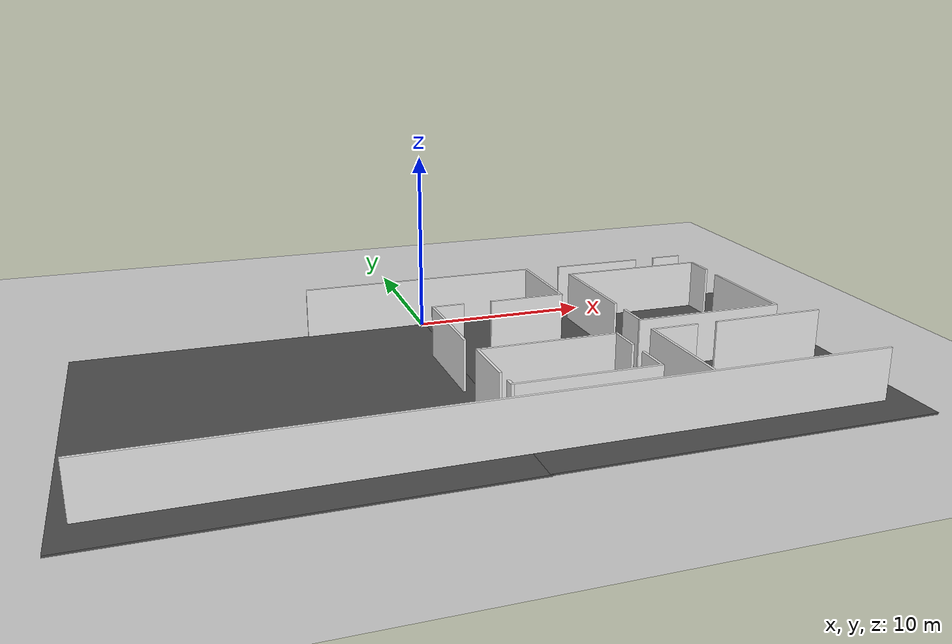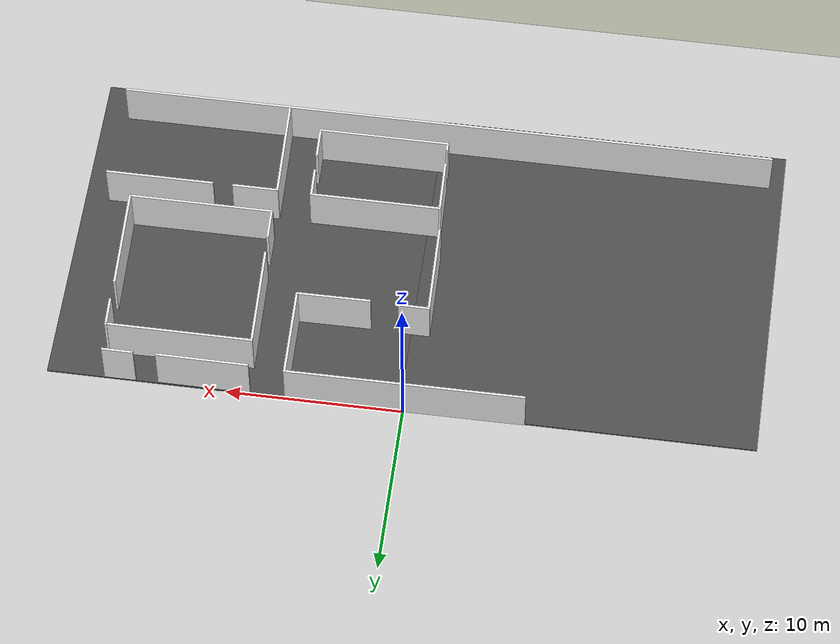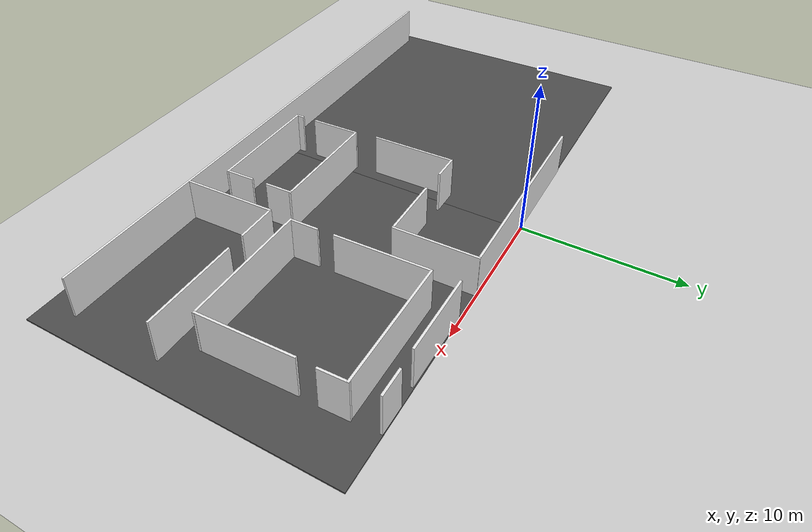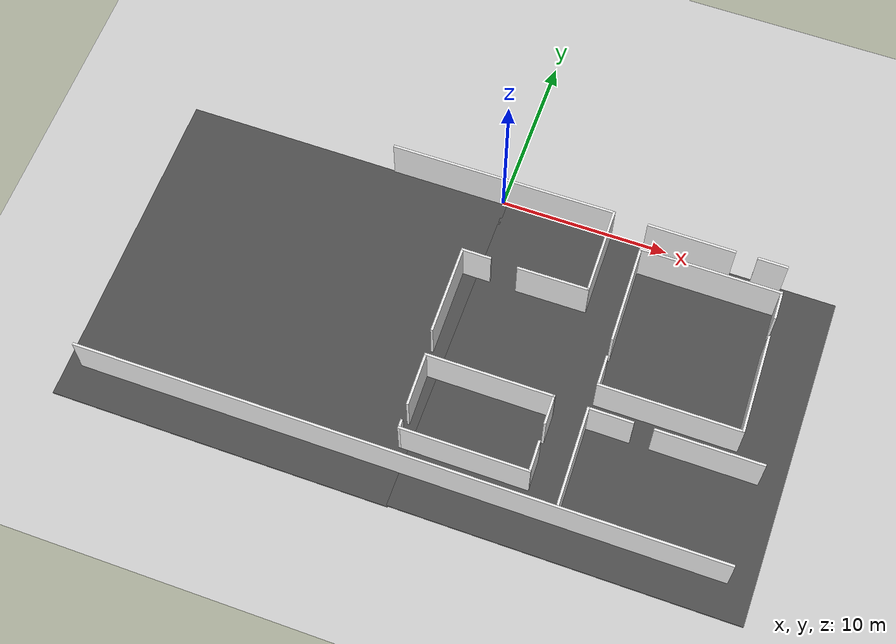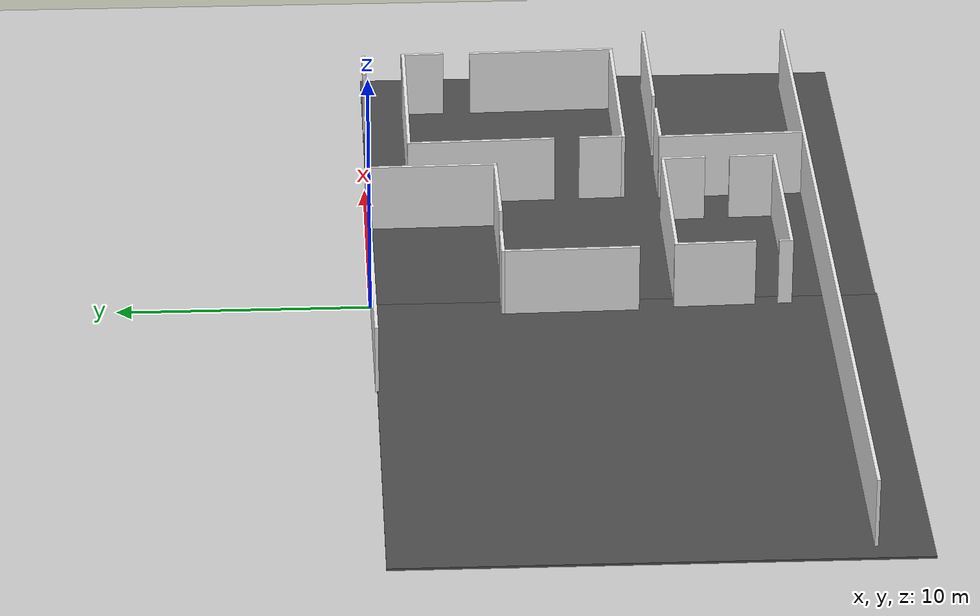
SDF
<sdf version="1.6">
 <world name="default">
  <model name="ground_plane">
   <static>1</static>
   <link name="link">
    <collision name="collision">
     <geometry><plane><normal>0 0 1</normal><size>100 100</size></plane></geometry>
     <surface><friction><ode><mu>100</mu><mu2>50</mu2></ode></friction></surface>
    </collision>
    <visual name="visual">
     <cast_shadows>0</cast_shadows>
     <geometry><plane><normal>0 0 1</normal><size>100 100</size></plane></geometry>
     <material>
      <script><uri>file://media/materials/scripts/gazebo.material</uri><name>Gazebo/Grey</name></script>
     </material>
    </visual>
    <velocity_decay><linear>0</linear><angular>0</angular></velocity_decay>
   </link>
  </model>
  <model name="asphalt_plane">
   <static>1</static>
   <link name="link">
    <collision name="collision"><geometry><box><size>20 20 0.1</size></box></geometry></collision>
    <visual name="visual">
     <cast_shadows>0</cast_shadows>
     <geometry><box><size>20 20 0.1</size></box></geometry>
     <material>
      <script>
       <uri>model://asphalt_plane/materials/scripts</uri>
       <uri>model://asphalt_plane/materials/textures</uri>
       <name>vrc/asphalt</name>
      </script>
     </material>
    </visual>
   </link>
   <pose>-9.73878 -10.1135 0 0 -0 0</pose>
  </model>
  <model name="asphalt_plane_1">
   <static>1</static>
   <link name="link">
    <collision name="collision"><geometry><box><size>20 20 0.1</size></box></geometry></collision>
    <visual name="visual">
     <cast_shadows>0</cast_shadows>
     <geometry><box><size>20 20 0.1</size></box></geometry>
     <material>
      <script>
       <uri>model://asphalt_plane/materials/scripts</uri>
       <uri>model://asphalt_plane/materials/textures</uri>
       <name>vrc/asphalt</name>
      </script>
     </material>
    </visual>
   </link>
   <pose>10.1506 -10.0531 0 0 -0 0</pose>
  </model>
  <model name="white_wall_outside_clone">
   <link name="link">
    <inertial>
     <mass>1</mass>
     <inertia>
      <ixx>0.166667</ixx>
      <ixy>0</ixy>
      <ixz>0</ixz>
      <iyy>0.166667</iyy>
      <iyz>0</iyz>
      <izz>0.166667</izz>
     </inertia>
    </inertial>
    <visual name="visual">
     <geometry><box><size>37.6355 0.139088 2.78993</size></box></geometry>
     <material>
      <script><name>Gazebo/White</name><uri>file://media/materials/scripts/gazebo.material</uri></script>
      <shader type="vertex"><normal_map>__default__</normal_map></shader>
      <ambient>1 1 1 1</ambient>
      <diffuse>1 1 1 1</diffuse>
      <specular>0 0 0 1</specular>
      <emissive>0 0 0 1</emissive>
     </material>
    </visual>
    <collision name="collision">
     <geometry><box><size>37.6355 0.139088 2.78993</size></box></geometry>
     <surface>
      <friction>
       <ode><mu>1</mu><mu2>1</mu2><fdir1>0 0 0</fdir1><slip1>0</slip1><slip2>0</slip2></ode>
       <torsional>
        <coefficient>1</coefficient>
        <patch_radius>0</patch_radius>
        <surface_radius>0</surface_radius>
        <use_patch_radius>1</use_patch_radius>
        <ode><slip>0</slip></ode>
       </torsional>
      </friction>
      <bounce><restitution_coefficient>0</restitution_coefficient><threshold>1e+06</threshold></bounce>
      <contact>
       <collide_without_contact>0</collide_without_contact>
       <collide_without_contact_bitmask>1</collide_without_contact_bitmask>
       <collide_bitmask>1</collide_bitmask>
       <ode>
        <soft_cfm>0</soft_cfm>
        <soft_erp>0.2</soft_erp>
        <kp>1e+13</kp>
        <kd>1</kd>
        <max_vel>0.01</max_vel>
        <min_depth>0</min_depth>
       </ode>
       <bullet>
        <split_impulse>1</split_impulse>
        <split_impulse_penetration_threshold>-0.01</split_impulse_penetration_threshold>
        <soft_cfm>0</soft_cfm>
        <soft_erp>0.2</soft_erp>
        <kp>1e+13</kp>
        <kd>1</kd>
       </bullet>
      </contact>
     </surface>
    </collision>
   </link>
   <static>1</static>
   <pose>-0.112251 -17.9871 1.44002 -1e-06 4e-06 -1.6e-05</pose>
  </model>
  <model name="white_wall3">
   <link name="link">
    <inertial>
     <mass>1</mass>
     <inertia>
      <ixx>0.166667</ixx>
      <ixy>0</ixy>
      <ixz>0</ixz>
      <iyy>0.166667</iyy>
      <iyz>0</iyz>
      <izz>0.166667</izz>
     </inertia>
    </inertial>
    <visual name="visual">
     <geometry><box><size>1.77743 0.139088 2.78993</size></box></geometry>
     <material>
      <script><name>Gazebo/White</name><uri>file://media/materials/scripts/gazebo.material</uri></script>
      <shader type="vertex"><normal_map>__default__</normal_map></shader>
      <ambient>1 1 1 1</ambient>
      <diffuse>1 1 1 1</diffuse>
      <specular>0 0 0 1</specular>
      <emissive>0 0 0 1</emissive>
     </material>
    </visual>
    <collision name="collision">
     <geometry><box><size>1.77743 0.139088 2.78993</size></box></geometry>
     <surface>
      <friction>
       <ode><mu>1</mu><mu2>1</mu2><fdir1>0 0 0</fdir1><slip1>0</slip1><slip2>0</slip2></ode>
       <torsional>
        <coefficient>1</coefficient>
        <patch_radius>0</patch_radius>
        <surface_radius>0</surface_radius>
        <use_patch_radius>1</use_patch_radius>
        <ode><slip>0</slip></ode>
       </torsional>
      </friction>
      <bounce><restitution_coefficient>0</restitution_coefficient><threshold>1e+06</threshold></bounce>
      <contact>
       <collide_without_contact>0</collide_without_contact>
       <collide_without_contact_bitmask>1</collide_without_contact_bitmask>
       <collide_bitmask>1</collide_bitmask>
       <ode>
        <soft_cfm>0</soft_cfm>
        <soft_erp>0.2</soft_erp>
        <kp>1e+13</kp>
        <kd>1</kd>
        <max_vel>0.01</max_vel>
        <min_depth>0</min_depth>
       </ode>
       <bullet>
        <split_impulse>1</split_impulse>
        <split_impulse_penetration_threshold>-0.01</split_impulse_penetration_threshold>
        <soft_cfm>0</soft_cfm>
        <soft_erp>0.2</soft_erp>
        <kp>1e+13</kp>
        <kd>1</kd>
       </bullet>
      </contact>
     </surface>
    </collision>
   </link>
   <static>1</static>
   <pose>6.94731 -12.8803 1.43995 4e-06 1e-06 1.59932</pose>
  </model>
  <model name="white_wall4">
   <link name="link">
    <inertial>
     <mass>1</mass>
     <inertia>
      <ixx>0.166667</ixx>
      <ixy>0</ixy>
      <ixz>0</ixz>
      <iyy>0.166667</iyy>
      <iyz>0</iyz>
      <izz>0.166667</izz>
     </inertia>
    </inertial>
    <visual name="visual">
     <geometry><box><size>6.20543 0.139088 2.78993</size></box></geometry>
     <material>
      <script><name>Gazebo/White</name><uri>file://media/materials/scripts/gazebo.material</uri></script>
      <shader type="vertex"><normal_map>__default__</normal_map></shader>
      <ambient>1 1 1 1</ambient>
      <diffuse>1 1 1 1</diffuse>
      <specular>0 0 0 1</specular>
      <emissive>0 0 0 1</emissive>
     </material>
    </visual>
    <collision name="collision">
     <geometry><box><size>6.20543 0.139088 2.78993</size></box></geometry>
     <surface>
      <friction>
       <ode><mu>1</mu><mu2>1</mu2><fdir1>0 0 0</fdir1><slip1>0</slip1><slip2>0</slip2></ode>
       <torsional>
        <coefficient>1</coefficient>
        <patch_radius>0</patch_radius>
        <surface_radius>0</surface_radius>
        <use_patch_radius>1</use_patch_radius>
        <ode><slip>0</slip></ode>
       </torsional>
      </friction>
      <bounce><restitution_coefficient>0</restitution_coefficient><threshold>1e+06</threshold></bounce>
      <contact>
       <collide_without_contact>0</collide_without_contact>
       <collide_without_contact_bitmask>1</collide_without_contact_bitmask>
       <collide_bitmask>1</collide_bitmask>
       <ode>
        <soft_cfm>0</soft_cfm>
        <soft_erp>0.2</soft_erp>
        <kp>1e+13</kp>
        <kd>1</kd>
        <max_vel>0.01</max_vel>
        <min_depth>0</min_depth>
       </ode>
       <bullet>
        <split_impulse>1</split_impulse>
        <split_impulse_penetration_threshold>-0.01</split_impulse_penetration_threshold>
        <soft_cfm>0</soft_cfm>
        <soft_erp>0.2</soft_erp>
        <kp>1e+13</kp>
        <kd>1</kd>
       </bullet>
      </contact>
     </surface>
    </collision>
   </link>
   <static>1</static>
   <pose>15.6823 -12.076 1.43996 -1e-06 4e-06 -1.6e-05</pose>
  </model>
  <model name="white_wall5">
   <link name="link">
    <inertial>
     <mass>1</mass>
     <inertia>
      <ixx>0.166667</ixx>
      <ixy>0</ixy>
      <ixz>0</ixz>
      <iyy>0.166667</iyy>
      <iyz>0</iyz>
      <izz>0.166667</izz>
     </inertia>
    </inertial>
    <visual name="visual">
     <geometry><box><size>2.62905 0.139088 2.78993</size></box></geometry>
     <material>
      <script><name>Gazebo/White</name><uri>file://media/materials/scripts/gazebo.material</uri></script>
      <shader type="vertex"><normal_map>__default__</normal_map></shader>
      <ambient>1 1 1 1</ambient>
      <diffuse>1 1 1 1</diffuse>
      <specular>0 0 0 1</specular>
      <emissive>0 0 0 1</emissive>
     </material>
    </visual>
    <collision name="collision">
     <geometry><box><size>2.62905 0.139088 2.78993</size></box></geometry>
     <surface>
      <friction>
       <ode><mu>1</mu><mu2>1</mu2><fdir1>0 0 0</fdir1><slip1>0</slip1><slip2>0</slip2></ode>
       <torsional>
        <coefficient>1</coefficient>
        <patch_radius>0</patch_radius>
        <surface_radius>0</surface_radius>
        <use_patch_radius>1</use_patch_radius>
        <ode><slip>0</slip></ode>
       </torsional>
      </friction>
      <bounce><restitution_coefficient>0</restitution_coefficient><threshold>1e+06</threshold></bounce>
      <contact>
       <collide_without_contact>0</collide_without_contact>
       <collide_without_contact_bitmask>1</collide_without_contact_bitmask>
       <collide_bitmask>1</collide_bitmask>
       <ode>
        <soft_cfm>0</soft_cfm>
        <soft_erp>0.2</soft_erp>
        <kp>1e+13</kp>
        <kd>1</kd>
        <max_vel>0.01</max_vel>
        <min_depth>0</min_depth>
       </ode>
       <bullet>
        <split_impulse>1</split_impulse>
        <split_impulse_penetration_threshold>-0.01</split_impulse_penetration_threshold>
        <soft_cfm>0</soft_cfm>
        <soft_erp>0.2</soft_erp>
        <kp>1e+13</kp>
        <kd>1</kd>
       </bullet>
      </contact>
     </surface>
    </collision>
   </link>
   <static>1</static>
   <pose>10.1577 -12.0848 1.43996 -1e-06 4e-06 -1.6e-05</pose>
  </model>
  <model name="white_wall1">
   <link name="link">
    <inertial>
     <mass>1</mass>
     <inertia>
      <ixx>0.166667</ixx>
      <ixy>0</ixy>
      <ixz>0</ixz>
      <iyy>0.166667</iyy>
      <iyz>0</iyz>
      <izz>0.166667</izz>
     </inertia>
    </inertial>
    <visual name="visual">
     <geometry><box><size>7.516 0.139088 2.78993</size></box></geometry>
     <material>
      <script><name>Gazebo/White</name><uri>file://media/materials/scripts/gazebo.material</uri></script>
      <shader type="vertex"><normal_map>__default__</normal_map></shader>
      <ambient>1 1 1 1</ambient>
      <diffuse>1 1 1 1</diffuse>
      <specular>0 0 0 1</specular>
      <emissive>0 0 0 1</emissive>
     </material>
    </visual>
    <collision name="collision">
     <geometry><box><size>7.516 0.139088 2.78993</size></box></geometry>
     <surface>
      <friction>
       <ode><mu>1</mu><mu2>1</mu2><fdir1>0 0 0</fdir1><slip1>0</slip1><slip2>0</slip2></ode>
       <torsional>
        <coefficient>1</coefficient>
        <patch_radius>0</patch_radius>
        <surface_radius>0</surface_radius>
        <use_patch_radius>1</use_patch_radius>
        <ode><slip>0</slip></ode>
       </torsional>
      </friction>
      <bounce><restitution_coefficient>0</restitution_coefficient><threshold>1e+06</threshold></bounce>
      <contact>
       <collide_without_contact>0</collide_without_contact>
       <collide_without_contact_bitmask>1</collide_without_contact_bitmask>
       <collide_bitmask>1</collide_bitmask>
       <ode>
        <soft_cfm>0</soft_cfm>
        <soft_erp>0.2</soft_erp>
        <kp>1e+13</kp>
        <kd>1</kd>
        <max_vel>0.01</max_vel>
        <min_depth>0</min_depth>
       </ode>
       <bullet>
        <split_impulse>1</split_impulse>
        <split_impulse_penetration_threshold>-0.01</split_impulse_penetration_threshold>
        <soft_cfm>0</soft_cfm>
        <soft_erp>0.2</soft_erp>
        <kp>1e+13</kp>
        <kd>1</kd>
       </bullet>
      </contact>
     </surface>
    </collision>
   </link>
   <static>1</static>
   <pose>3.24328 -12.0447 1.43996 -1e-06 4e-06 -1.6e-05</pose>
  </model>
  <model name="white_wall2_clone">
   <link name="link">
    <inertial>
     <mass>1</mass>
     <inertia>
      <ixx>0.166667</ixx>
      <ixy>0</ixy>
      <ixz>0</ixz>
      <iyy>0.166667</iyy>
      <iyz>0</iyz>
      <izz>0.166667</izz>
     </inertia>
    </inertial>
    <visual name="visual">
     <geometry><box><size>3.22688 0.139088 2.78993</size></box></geometry>
     <material>
      <script><name>Gazebo/White</name><uri>file://media/materials/scripts/gazebo.material</uri></script>
      <shader type="vertex"><normal_map>__default__</normal_map></shader>
      <ambient>1 1 1 1</ambient>
      <diffuse>1 1 1 1</diffuse>
      <specular>0 0 0 1</specular>
      <emissive>0 0 0 1</emissive>
     </material>
    </visual>
    <collision name="collision">
     <geometry><box><size>3.22688 0.139088 2.78993</size></box></geometry>
     <surface>
      <friction>
       <ode><mu>1</mu><mu2>1</mu2><fdir1>0 0 0</fdir1><slip1>0</slip1><slip2>0</slip2></ode>
       <torsional>
        <coefficient>1</coefficient>
        <patch_radius>0</patch_radius>
        <surface_radius>0</surface_radius>
        <use_patch_radius>1</use_patch_radius>
        <ode><slip>0</slip></ode>
       </torsional>
      </friction>
      <bounce><restitution_coefficient>0</restitution_coefficient><threshold>1e+06</threshold></bounce>
      <contact>
       <collide_without_contact>0</collide_without_contact>
       <collide_without_contact_bitmask>1</collide_without_contact_bitmask>
       <collide_bitmask>1</collide_bitmask>
       <ode>
        <soft_cfm>0</soft_cfm>
        <soft_erp>0.2</soft_erp>
        <kp>1e+13</kp>
        <kd>1</kd>
        <max_vel>0.01</max_vel>
        <min_depth>0</min_depth>
       </ode>
       <bullet>
        <split_impulse>1</split_impulse>
        <split_impulse_penetration_threshold>-0.01</split_impulse_penetration_threshold>
        <soft_cfm>0</soft_cfm>
        <soft_erp>0.2</soft_erp>
        <kp>1e+13</kp>
        <kd>1</kd>
       </bullet>
      </contact>
     </surface>
    </collision>
   </link>
   <static>1</static>
   <pose>-0.413972 -13.5813 1.43995 4e-06 1e-06 1.59932</pose>
  </model>
  <model name="white_wall8">
   <link name="link">
    <inertial>
     <mass>1</mass>
     <inertia>
      <ixx>0.166667</ixx>
      <ixy>0</ixy>
      <ixz>0</ixz>
      <iyy>0.166667</iyy>
      <iyz>0</iyz>
      <izz>0.166667</izz>
     </inertia>
    </inertial>
    <visual name="visual">
     <geometry><box><size>8.30741 0.139088 2.78993</size></box></geometry>
     <material>
      <script><name>Gazebo/White</name><uri>file://media/materials/scripts/gazebo.material</uri></script>
      <shader type="vertex"><normal_map>__default__</normal_map></shader>
      <ambient>1 1 1 1</ambient>
      <diffuse>1 1 1 1</diffuse>
      <specular>0 0 0 1</specular>
      <emissive>0 0 0 1</emissive>
     </material>
    </visual>
    <collision name="collision">
     <geometry><box><size>8.30741 0.139088 2.78993</size></box></geometry>
     <surface>
      <friction>
       <ode><mu>1</mu><mu2>1</mu2><fdir1>0 0 0</fdir1><slip1>0</slip1><slip2>0</slip2></ode>
       <torsional>
        <coefficient>1</coefficient>
        <patch_radius>0</patch_radius>
        <surface_radius>0</surface_radius>
        <use_patch_radius>1</use_patch_radius>
        <ode><slip>0</slip></ode>
       </torsional>
      </friction>
      <bounce><restitution_coefficient>0</restitution_coefficient><threshold>1e+06</threshold></bounce>
      <contact>
       <collide_without_contact>0</collide_without_contact>
       <collide_without_contact_bitmask>1</collide_without_contact_bitmask>
       <collide_bitmask>1</collide_bitmask>
       <ode>
        <soft_cfm>0</soft_cfm>
        <soft_erp>0.2</soft_erp>
        <kp>1e+13</kp>
        <kd>1</kd>
        <max_vel>0.01</max_vel>
        <min_depth>0</min_depth>
       </ode>
       <bullet>
        <split_impulse>1</split_impulse>
        <split_impulse_penetration_threshold>-0.01</split_impulse_penetration_threshold>
        <soft_cfm>0</soft_cfm>
        <soft_erp>0.2</soft_erp>
        <kp>1e+13</kp>
        <kd>1</kd>
       </bullet>
      </contact>
     </surface>
    </collision>
   </link>
   <static>1</static>
   <pose>13.0532 -10.5824 1.43997 -1e-06 4e-06 -1.6e-05</pose>
  </model>
  <model name="white_wall10">
   <link name="link">
    <inertial>
     <mass>1</mass>
     <inertia>
      <ixx>0.166667</ixx>
      <ixy>0</ixy>
      <ixz>0</ixz>
      <iyy>0.166667</iyy>
      <iyz>0</iyz>
      <izz>0.166667</izz>
     </inertia>
    </inertial>
    <visual name="visual">
     <geometry><box><size>6.01508 0.139088 2.78993</size></box></geometry>
     <material>
      <script><name>Gazebo/White</name><uri>file://media/materials/scripts/gazebo.material</uri></script>
      <shader type="vertex"><normal_map>__default__</normal_map></shader>
      <ambient>1 1 1 1</ambient>
      <diffuse>1 1 1 1</diffuse>
      <specular>0 0 0 1</specular>
      <emissive>0 0 0 1</emissive>
     </material>
    </visual>
    <collision name="collision">
     <geometry><box><size>6.01508 0.139088 2.78993</size></box></geometry>
     <surface>
      <friction>
       <ode><mu>1</mu><mu2>1</mu2><fdir1>0 0 0</fdir1><slip1>0</slip1><slip2>0</slip2></ode>
       <torsional>
        <coefficient>1</coefficient>
        <patch_radius>0</patch_radius>
        <surface_radius>0</surface_radius>
        <use_patch_radius>1</use_patch_radius>
        <ode><slip>0</slip></ode>
       </torsional>
      </friction>
      <bounce><restitution_coefficient>0</restitution_coefficient><threshold>1e+06</threshold></bounce>
      <contact>
       <collide_without_contact>0</collide_without_contact>
       <collide_without_contact_bitmask>1</collide_without_contact_bitmask>
       <collide_bitmask>1</collide_bitmask>
       <ode>
        <soft_cfm>0</soft_cfm>
        <soft_erp>0.2</soft_erp>
        <kp>1e+13</kp>
        <kd>1</kd>
        <max_vel>0.01</max_vel>
        <min_depth>0</min_depth>
       </ode>
       <bullet>
        <split_impulse>1</split_impulse>
        <split_impulse_penetration_threshold>-0.01</split_impulse_penetration_threshold>
        <soft_cfm>0</soft_cfm>
        <soft_erp>0.2</soft_erp>
        <kp>1e+13</kp>
        <kd>1</kd>
       </bullet>
      </contact>
     </surface>
    </collision>
   </link>
   <static>1</static>
   <pose>8.9699 -15.0457 1.43997 4e-06 1e-06 1.59932</pose>
  </model>
  <model name="white_wall3_clone_clone_1">
   <link name="link">
    <inertial>
     <mass>1</mass>
     <inertia>
      <ixx>0.166667</ixx>
      <ixy>0</ixy>
      <ixz>0</ixz>
      <iyy>0.166667</iyy>
      <iyz>0</iyz>
      <izz>0.166667</izz>
     </inertia>
    </inertial>
    <visual name="visual">
     <geometry><box><size>1.77743 0.139088 2.78993</size></box></geometry>
     <material>
      <script><name>Gazebo/White</name><uri>file://media/materials/scripts/gazebo.material</uri></script>
      <shader type="vertex"><normal_map>__default__</normal_map></shader>
      <ambient>1 1 1 1</ambient>
      <diffuse>1 1 1 1</diffuse>
      <specular>0 0 0 1</specular>
      <emissive>0 0 0 1</emissive>
     </material>
    </visual>
    <collision name="collision">
     <geometry><box><size>1.77743 0.139088 2.78993</size></box></geometry>
     <surface>
      <friction>
       <ode><mu>1</mu><mu2>1</mu2><fdir1>0 0 0</fdir1><slip1>0</slip1><slip2>0</slip2></ode>
       <torsional>
        <coefficient>1</coefficient>
        <patch_radius>0</patch_radius>
        <surface_radius>0</surface_radius>
        <use_patch_radius>1</use_patch_radius>
        <ode><slip>0</slip></ode>
       </torsional>
      </friction>
      <bounce><restitution_coefficient>0</restitution_coefficient><threshold>1e+06</threshold></bounce>
      <contact>
       <collide_without_contact>0</collide_without_contact>
       <collide_without_contact_bitmask>1</collide_without_contact_bitmask>
       <collide_bitmask>1</collide_bitmask>
       <ode>
        <soft_cfm>0</soft_cfm>
        <soft_erp>0.2</soft_erp>
        <kp>1e+13</kp>
        <kd>1</kd>
        <max_vel>0.01</max_vel>
        <min_depth>0</min_depth>
       </ode>
       <bullet>
        <split_impulse>1</split_impulse>
        <split_impulse_penetration_threshold>-0.01</split_impulse_penetration_threshold>
        <soft_cfm>0</soft_cfm>
        <soft_erp>0.2</soft_erp>
        <kp>1e+13</kp>
        <kd>1</kd>
       </bullet>
      </contact>
     </surface>
    </collision>
   </link>
   <static>1</static>
   <pose>8.95013 -9.65761 1.43995 4e-06 1e-06 1.59932</pose>
  </model>
  <model name="white_wall10_clone">
   <link name="link">
    <inertial>
     <mass>1</mass>
     <inertia>
      <ixx>0.166667</ixx>
      <ixy>0</ixy>
      <ixz>0</ixz>
      <iyy>0.166667</iyy>
      <iyz>0</iyz>
      <izz>0.166667</izz>
     </inertia>
    </inertial>
    <visual name="visual">
     <geometry><box><size>6.01508 0.139088 2.78993</size></box></geometry>
     <material>
      <script><name>Gazebo/White</name><uri>file://media/materials/scripts/gazebo.material</uri></script>
      <shader type="vertex"><normal_map>__default__</normal_map></shader>
      <ambient>1 1 1 1</ambient>
      <diffuse>1 1 1 1</diffuse>
      <specular>0 0 0 1</specular>
      <emissive>0 0 0 1</emissive>
     </material>
    </visual>
    <collision name="collision">
     <geometry><box><size>6.01508 0.139088 2.78993</size></box></geometry>
     <surface>
      <friction>
       <ode><mu>1</mu><mu2>1</mu2><fdir1>0 0 0</fdir1><slip1>0</slip1><slip2>0</slip2></ode>
       <torsional>
        <coefficient>1</coefficient>
        <patch_radius>0</patch_radius>
        <surface_radius>0</surface_radius>
        <use_patch_radius>1</use_patch_radius>
        <ode><slip>0</slip></ode>
       </torsional>
      </friction>
      <bounce><restitution_coefficient>0</restitution_coefficient><threshold>1e+06</threshold></bounce>
      <contact>
       <collide_without_contact>0</collide_without_contact>
       <collide_without_contact_bitmask>1</collide_without_contact_bitmask>
       <collide_bitmask>1</collide_bitmask>
       <ode>
        <soft_cfm>0</soft_cfm>
        <soft_erp>0.2</soft_erp>
        <kp>1e+13</kp>
        <kd>1</kd>
        <max_vel>0.01</max_vel>
        <min_depth>0</min_depth>
       </ode>
       <bullet>
        <split_impulse>1</split_impulse>
        <split_impulse_penetration_threshold>-0.01</split_impulse_penetration_threshold>
        <soft_cfm>0</soft_cfm>
        <soft_erp>0.2</soft_erp>
        <kp>1e+13</kp>
        <kd>1</kd>
       </bullet>
      </contact>
     </surface>
    </collision>
   </link>
   <static>1</static>
   <pose>8.80476 -4.76383 1.43997 4e-06 1e-06 1.59932</pose>
  </model>
  <model name="white_wall8_clone">
   <link name="link">
    <inertial>
     <mass>1</mass>
     <inertia>
      <ixx>0.166667</ixx>
      <ixy>0</ixy>
      <ixz>0</ixz>
      <iyy>0.166667</iyy>
      <iyz>0</iyz>
      <izz>0.166667</izz>
     </inertia>
    </inertial>
    <visual name="visual">
     <geometry><box><size>8.30741 0.139088 2.78993</size></box></geometry>
     <material>
      <script><name>Gazebo/White</name><uri>file://media/materials/scripts/gazebo.material</uri></script>
      <shader type="vertex"><normal_map>__default__</normal_map></shader>
      <ambient>1 1 1 1</ambient>
      <diffuse>1 1 1 1</diffuse>
      <specular>0 0 0 1</specular>
      <emissive>0 0 0 1</emissive>
     </material>
    </visual>
    <collision name="collision">
     <geometry><box><size>8.30741 0.139088 2.78993</size></box></geometry>
     <surface>
      <friction>
       <ode><mu>1</mu><mu2>1</mu2><fdir1>0 0 0</fdir1><slip1>0</slip1><slip2>0</slip2></ode>
       <torsional>
        <coefficient>1</coefficient>
        <patch_radius>0</patch_radius>
        <surface_radius>0</surface_radius>
        <use_patch_radius>1</use_patch_radius>
        <ode><slip>0</slip></ode>
       </torsional>
      </friction>
      <bounce><restitution_coefficient>0</restitution_coefficient><threshold>1e+06</threshold></bounce>
      <contact>
       <collide_without_contact>0</collide_without_contact>
       <collide_without_contact_bitmask>1</collide_without_contact_bitmask>
       <collide_bitmask>1</collide_bitmask>
       <ode>
        <soft_cfm>0</soft_cfm>
        <soft_erp>0.2</soft_erp>
        <kp>1e+13</kp>
        <kd>1</kd>
        <max_vel>0.01</max_vel>
        <min_depth>0</min_depth>
       </ode>
       <bullet>
        <split_impulse>1</split_impulse>
        <split_impulse_penetration_threshold>-0.01</split_impulse_penetration_threshold>
        <soft_cfm>0</soft_cfm>
        <soft_erp>0.2</soft_erp>
        <kp>1e+13</kp>
        <kd>1</kd>
       </bullet>
      </contact>
     </surface>
    </collision>
   </link>
   <static>1</static>
   <pose>12.8316 -1.81147 1.43997 -1e-06 4e-06 -1.6e-05</pose>
  </model>
  <model name="white_wall10_clone_clone">
   <link name="link">
    <inertial>
     <mass>1</mass>
     <inertia>
      <ixx>0.166667</ixx>
      <ixy>0</ixy>
      <ixz>0</ixz>
      <iyy>0.166667</iyy>
      <iyz>0</iyz>
      <izz>0.166667</izz>
     </inertia>
    </inertial>
    <visual name="visual">
     <geometry><box><size>6.01508 0.139088 2.78993</size></box></geometry>
     <material>
      <script><name>Gazebo/White</name><uri>file://media/materials/scripts/gazebo.material</uri></script>
      <shader type="vertex"><normal_map>__default__</normal_map></shader>
      <ambient>1 1 1 1</ambient>
      <diffuse>1 1 1 1</diffuse>
      <specular>0 0 0 1</specular>
      <emissive>0 0 0 1</emissive>
     </material>
    </visual>
    <collision name="collision">
     <geometry><box><size>6.01508 0.139088 2.78993</size></box></geometry>
     <surface>
      <friction>
       <ode><mu>1</mu><mu2>1</mu2><fdir1>0 0 0</fdir1><slip1>0</slip1><slip2>0</slip2></ode>
       <torsional>
        <coefficient>1</coefficient>
        <patch_radius>0</patch_radius>
        <surface_radius>0</surface_radius>
        <use_patch_radius>1</use_patch_radius>
        <ode><slip>0</slip></ode>
       </torsional>
      </friction>
      <bounce><restitution_coefficient>0</restitution_coefficient><threshold>1e+06</threshold></bounce>
      <contact>
       <collide_without_contact>0</collide_without_contact>
       <collide_without_contact_bitmask>1</collide_without_contact_bitmask>
       <collide_bitmask>1</collide_bitmask>
       <ode>
        <soft_cfm>0</soft_cfm>
        <soft_erp>0.2</soft_erp>
        <kp>1e+13</kp>
        <kd>1</kd>
        <max_vel>0.01</max_vel>
        <min_depth>0</min_depth>
       </ode>
       <bullet>
        <split_impulse>1</split_impulse>
        <split_impulse_penetration_threshold>-0.01</split_impulse_penetration_threshold>
        <soft_cfm>0</soft_cfm>
        <soft_erp>0.2</soft_erp>
        <kp>1e+13</kp>
        <kd>1</kd>
       </bullet>
      </contact>
     </surface>
    </collision>
   </link>
   <static>1</static>
   <pose>17.0462 -7.62002 1.43997 4e-06 1e-06 1.59932</pose>
  </model>
  <model name="white_wall3_clone_clone_1_clone">
   <link name="link">
    <inertial>
     <mass>1</mass>
     <inertia>
      <ixx>0.166667</ixx>
      <ixy>0</ixy>
      <ixz>0</ixz>
      <iyy>0.166667</iyy>
      <iyz>0</iyz>
      <izz>0.166667</izz>
     </inertia>
    </inertial>
    <visual name="visual">
     <geometry><box><size>1.77743 0.139088 2.78993</size></box></geometry>
     <material>
      <script><name>Gazebo/White</name><uri>file://media/materials/scripts/gazebo.material</uri></script>
      <shader type="vertex"><normal_map>__default__</normal_map></shader>
      <ambient>1 1 1 1</ambient>
      <diffuse>1 1 1 1</diffuse>
      <specular>0 0 0 1</specular>
      <emissive>0 0 0 1</emissive>
     </material>
    </visual>
    <collision name="collision">
     <geometry><box><size>1.77743 0.139088 2.78993</size></box></geometry>
     <surface>
      <friction>
       <ode><mu>1</mu><mu2>1</mu2><fdir1>0 0 0</fdir1><slip1>0</slip1><slip2>0</slip2></ode>
       <torsional>
        <coefficient>1</coefficient>
        <patch_radius>0</patch_radius>
        <surface_radius>0</surface_radius>
        <use_patch_radius>1</use_patch_radius>
        <ode><slip>0</slip></ode>
       </torsional>
      </friction>
      <bounce><restitution_coefficient>0</restitution_coefficient><threshold>1e+06</threshold></bounce>
      <contact>
       <collide_without_contact>0</collide_without_contact>
       <collide_without_contact_bitmask>1</collide_without_contact_bitmask>
       <collide_bitmask>1</collide_bitmask>
       <ode>
        <soft_cfm>0</soft_cfm>
        <soft_erp>0.2</soft_erp>
        <kp>1e+13</kp>
        <kd>1</kd>
        <max_vel>0.01</max_vel>
        <min_depth>0</min_depth>
       </ode>
       <bullet>
        <split_impulse>1</split_impulse>
        <split_impulse_penetration_threshold>-0.01</split_impulse_penetration_threshold>
        <soft_cfm>0</soft_cfm>
        <soft_erp>0.2</soft_erp>
        <kp>1e+13</kp>
        <kd>1</kd>
       </bullet>
      </contact>
     </surface>
    </collision>
   </link>
   <static>1</static>
   <pose>16.9602 -2.60992 1.43995 4e-06 1e-06 1.59932</pose>
  </model>
  <model name="white_wall3_clone_clone_1_clone_0">
   <link name="link">
    <inertial>
     <mass>1</mass>
     <inertia>
      <ixx>0.166667</ixx>
      <ixy>0</ixy>
      <ixz>0</ixz>
      <iyy>0.166667</iyy>
      <iyz>0</iyz>
      <izz>0.166667</izz>
     </inertia>
    </inertial>
    <visual name="visual">
     <geometry><box><size>1.77743 0.139088 2.78993</size></box></geometry>
     <material>
      <script><name>Gazebo/White</name><uri>file://media/materials/scripts/gazebo.material</uri></script>
      <shader type="vertex"><normal_map>__default__</normal_map></shader>
      <ambient>1 1 1 1</ambient>
      <diffuse>1 1 1 1</diffuse>
      <specular>0 0 0 1</specular>
      <emissive>0 0 0 1</emissive>
     </material>
    </visual>
    <collision name="collision">
     <geometry><box><size>1.77743 0.139088 2.78993</size></box></geometry>
     <surface>
      <friction>
       <ode><mu>1</mu><mu2>1</mu2><fdir1>0 0 0</fdir1><slip1>0</slip1><slip2>0</slip2></ode>
       <torsional>
        <coefficient>1</coefficient>
        <patch_radius>0</patch_radius>
        <surface_radius>0</surface_radius>
        <use_patch_radius>1</use_patch_radius>
        <ode><slip>0</slip></ode>
       </torsional>
      </friction>
      <bounce><restitution_coefficient>0</restitution_coefficient><threshold>1e+06</threshold></bounce>
      <contact>
       <collide_without_contact>0</collide_without_contact>
       <collide_without_contact_bitmask>1</collide_without_contact_bitmask>
       <collide_bitmask>1</collide_bitmask>
       <ode>
        <soft_cfm>0</soft_cfm>
        <soft_erp>0.2</soft_erp>
        <kp>1e+13</kp>
        <kd>1</kd>
        <max_vel>0.01</max_vel>
        <min_depth>0</min_depth>
       </ode>
       <bullet>
        <split_impulse>1</split_impulse>
        <split_impulse_penetration_threshold>-0.01</split_impulse_penetration_threshold>
        <soft_cfm>0</soft_cfm>
        <soft_erp>0.2</soft_erp>
        <kp>1e+13</kp>
        <kd>1</kd>
       </bullet>
      </contact>
     </surface>
    </collision>
   </link>
   <static>1</static>
   <pose>15.989 -0.14095 1.43995 1e-06 -4e-06 3.13818</pose>
  </model>
  <model name="white_wall13">
   <link name="link">
    <inertial>
     <mass>1</mass>
     <inertia>
      <ixx>0.166667</ixx>
      <ixy>0</ixy>
      <ixz>0</ixz>
      <iyy>0.166667</iyy>
      <iyz>0</iyz>
      <izz>0.166667</izz>
     </inertia>
    </inertial>
    <visual name="visual">
     <geometry><box><size>5.21157 0.139088 2.78993</size></box></geometry>
     <material>
      <script><name>Gazebo/White</name><uri>file://media/materials/scripts/gazebo.material</uri></script>
      <shader type="vertex"><normal_map>__default__</normal_map></shader>
      <ambient>1 1 1 1</ambient>
      <diffuse>1 1 1 1</diffuse>
      <specular>0 0 0 1</specular>
      <emissive>0 0 0 1</emissive>
     </material>
    </visual>
    <collision name="collision">
     <geometry><box><size>5.21157 0.139088 2.78993</size></box></geometry>
     <surface>
      <friction>
       <ode><mu>1</mu><mu2>1</mu2><fdir1>0 0 0</fdir1><slip1>0</slip1><slip2>0</slip2></ode>
       <torsional>
        <coefficient>1</coefficient>
        <patch_radius>0</patch_radius>
        <surface_radius>0</surface_radius>
        <use_patch_radius>1</use_patch_radius>
        <ode><slip>0</slip></ode>
       </torsional>
      </friction>
      <bounce><restitution_coefficient>0</restitution_coefficient><threshold>1e+06</threshold></bounce>
      <contact>
       <collide_without_contact>0</collide_without_contact>
       <collide_without_contact_bitmask>1</collide_without_contact_bitmask>
       <collide_bitmask>1</collide_bitmask>
       <ode>
        <soft_cfm>0</soft_cfm>
        <soft_erp>0.2</soft_erp>
        <kp>1e+13</kp>
        <kd>1</kd>
        <max_vel>0.01</max_vel>
        <min_depth>0</min_depth>
       </ode>
       <bullet>
        <split_impulse>1</split_impulse>
        <split_impulse_penetration_threshold>-0.01</split_impulse_penetration_threshold>
        <soft_cfm>0</soft_cfm>
        <soft_erp>0.2</soft_erp>
        <kp>1e+13</kp>
        <kd>1</kd>
       </bullet>
      </contact>
     </surface>
    </collision>
   </link>
   <static>1</static>
   <pose>11.2444 -0.169888 1.43995 1e-06 -4e-06 3.13818</pose>
  </model>
  <model name="white_wall3_clone_clone_1_clone_0_clone_0_clone">
   <link name="link">
    <inertial>
     <mass>1</mass>
     <inertia>
      <ixx>0.166667</ixx>
      <ixy>0</ixy>
      <ixz>0</ixz>
      <iyy>0.166667</iyy>
      <iyz>0</iyz>
      <izz>0.166667</izz>
     </inertia>
    </inertial>
    <visual name="visual">
     <geometry><box><size>1.77743 0.139088 2.78993</size></box></geometry>
     <material>
      <script><name>Gazebo/White</name><uri>file://media/materials/scripts/gazebo.material</uri></script>
      <shader type="vertex"><normal_map>__default__</normal_map></shader>
      <ambient>1 1 1 1</ambient>
      <diffuse>1 1 1 1</diffuse>
      <specular>0 0 0 1</specular>
      <emissive>0 0 0 1</emissive>
     </material>
    </visual>
    <collision name="collision">
     <geometry><box><size>1.77743 0.139088 2.78993</size></box></geometry>
     <surface>
      <friction>
       <ode><mu>1</mu><mu2>1</mu2><fdir1>0 0 0</fdir1><slip1>0</slip1><slip2>0</slip2></ode>
       <torsional>
        <coefficient>1</coefficient>
        <patch_radius>0</patch_radius>
        <surface_radius>0</surface_radius>
        <use_patch_radius>1</use_patch_radius>
        <ode><slip>0</slip></ode>
       </torsional>
      </friction>
      <bounce><restitution_coefficient>0</restitution_coefficient><threshold>1e+06</threshold></bounce>
      <contact>
       <collide_without_contact>0</collide_without_contact>
       <collide_without_contact_bitmask>1</collide_without_contact_bitmask>
       <collide_bitmask>1</collide_bitmask>
       <ode>
        <soft_cfm>0</soft_cfm>
        <soft_erp>0.2</soft_erp>
        <kp>1e+13</kp>
        <kd>1</kd>
        <max_vel>0.01</max_vel>
        <min_depth>0</min_depth>
       </ode>
       <bullet>
        <split_impulse>1</split_impulse>
        <split_impulse_penetration_threshold>-0.01</split_impulse_penetration_threshold>
        <soft_cfm>0</soft_cfm>
        <soft_erp>0.2</soft_erp>
        <kp>1e+13</kp>
        <kd>1</kd>
       </bullet>
      </contact>
     </surface>
    </collision>
   </link>
   <static>1</static>
   <pose>0.083957 -5.21662 1.43995 1e-06 -4e-06 3.13818</pose>
  </model>
  <model name="white_wall10_clone_clone_0_clone">
   <link name="link">
    <inertial>
     <mass>1</mass>
     <inertia>
      <ixx>0.166667</ixx>
      <ixy>0</ixy>
      <ixz>0</ixz>
      <iyy>0.166667</iyy>
      <iyz>0</iyz>
      <izz>0.166667</izz>
     </inertia>
    </inertial>
    <visual name="visual">
     <geometry><box><size>5.31538 0.139088 2.78993</size></box></geometry>
     <material>
      <script><name>Gazebo/White</name><uri>file://media/materials/scripts/gazebo.material</uri></script>
      <shader type="vertex"><normal_map>__default__</normal_map></shader>
      <ambient>1 1 1 1</ambient>
      <diffuse>1 1 1 1</diffuse>
      <specular>0 0 0 1</specular>
      <emissive>0 0 0 1</emissive>
     </material>
    </visual>
    <collision name="collision">
     <geometry><box><size>5.31538 0.139088 2.78993</size></box></geometry>
     <surface>
      <friction>
       <ode><mu>1</mu><mu2>1</mu2><fdir1>0 0 0</fdir1><slip1>0</slip1><slip2>0</slip2></ode>
       <torsional>
        <coefficient>1</coefficient>
        <patch_radius>0</patch_radius>
        <surface_radius>0</surface_radius>
        <use_patch_radius>1</use_patch_radius>
        <ode><slip>0</slip></ode>
       </torsional>
      </friction>
      <bounce><restitution_coefficient>0</restitution_coefficient><threshold>1e+06</threshold></bounce>
      <contact>
       <collide_without_contact>0</collide_without_contact>
       <collide_without_contact_bitmask>1</collide_without_contact_bitmask>
       <collide_bitmask>1</collide_bitmask>
       <ode>
        <soft_cfm>0</soft_cfm>
        <soft_erp>0.2</soft_erp>
        <kp>1e+13</kp>
        <kd>1</kd>
        <max_vel>0.01</max_vel>
        <min_depth>0</min_depth>
       </ode>
       <bullet>
        <split_impulse>1</split_impulse>
        <split_impulse_penetration_threshold>-0.01</split_impulse_penetration_threshold>
        <soft_cfm>0</soft_cfm>
        <soft_erp>0.2</soft_erp>
        <kp>1e+13</kp>
        <kd>1</kd>
       </bullet>
      </contact>
     </surface>
    </collision>
   </link>
   <static>1</static>
   <pose>6.65512 -2.64298 1.43997 4e-06 1e-06 1.58936</pose>
  </model>
  <model name="white_wall22">
   <link name="link">
    <inertial>
     <mass>1</mass>
     <inertia>
      <ixx>0.166667</ixx>
      <ixy>0</ixy>
      <ixz>0</ixz>
      <iyy>0.166667</iyy>
      <iyz>0</iyz>
      <izz>0.166667</izz>
     </inertia>
    </inertial>
    <visual name="visual">
     <geometry><box><size>4.21215 0.139088 2.78993</size></box></geometry>
     <material>
      <script><name>Gazebo/White</name><uri>file://media/materials/scripts/gazebo.material</uri></script>
      <shader type="vertex"><normal_map>__default__</normal_map></shader>
      <ambient>1 1 1 1</ambient>
      <diffuse>1 1 1 1</diffuse>
      <specular>0 0 0 1</specular>
      <emissive>0 0 0 1</emissive>
     </material>
    </visual>
    <collision name="collision">
     <geometry><box><size>4.21215 0.139088 2.78993</size></box></geometry>
     <surface>
      <friction>
       <ode><mu>1</mu><mu2>1</mu2><fdir1>0 0 0</fdir1><slip1>0</slip1><slip2>0</slip2></ode>
       <torsional>
        <coefficient>1</coefficient>
        <patch_radius>0</patch_radius>
        <surface_radius>0</surface_radius>
        <use_patch_radius>1</use_patch_radius>
        <ode><slip>0</slip></ode>
       </torsional>
      </friction>
      <bounce><restitution_coefficient>0</restitution_coefficient><threshold>1e+06</threshold></bounce>
      <contact>
       <collide_without_contact>0</collide_without_contact>
       <collide_without_contact_bitmask>1</collide_without_contact_bitmask>
       <collide_bitmask>1</collide_bitmask>
       <ode>
        <soft_cfm>0</soft_cfm>
        <soft_erp>0.2</soft_erp>
        <kp>1e+13</kp>
        <kd>1</kd>
        <max_vel>0.01</max_vel>
        <min_depth>0</min_depth>
       </ode>
       <bullet>
        <split_impulse>1</split_impulse>
        <split_impulse_penetration_threshold>-0.01</split_impulse_penetration_threshold>
        <soft_cfm>0</soft_cfm>
        <soft_erp>0.2</soft_erp>
        <kp>1e+13</kp>
        <kd>1</kd>
       </bullet>
      </contact>
     </surface>
    </collision>
   </link>
   <static>1</static>
   <pose>4.64622 -5.25886 1.43998 1e-06 -4e-06 -3.13374</pose>
  </model>
  <model name="white_wall23">
   <link name="link">
    <inertial>
     <mass>1</mass>
     <inertia>
      <ixx>0.166667</ixx>
      <ixy>0</ixy>
      <ixz>0</ixz>
      <iyy>0.166667</iyy>
      <iyz>0</iyz>
      <izz>0.166667</izz>
     </inertia>
    </inertial>
    <visual name="visual">
     <geometry><box><size>13.4701 0.139088 2.78993</size></box></geometry>
     <material>
      <script><name>Gazebo/White</name><uri>file://media/materials/scripts/gazebo.material</uri></script>
      <shader type="vertex"><normal_map>__default__</normal_map></shader>
      <ambient>1 1 1 1</ambient>
      <diffuse>1 1 1 1</diffuse>
      <specular>0 0 0 1</specular>
      <emissive>0 0 0 1</emissive>
     </material>
    </visual>
    <collision name="collision">
     <geometry><box><size>13.4701 0.139088 2.78993</size></box></geometry>
     <surface>
      <friction>
       <ode><mu>1</mu><mu2>1</mu2><fdir1>0 0 0</fdir1><slip1>0</slip1><slip2>0</slip2></ode>
       <torsional>
        <coefficient>1</coefficient>
        <patch_radius>0</patch_radius>
        <surface_radius>0</surface_radius>
        <use_patch_radius>1</use_patch_radius>
        <ode><slip>0</slip></ode>
       </torsional>
      </friction>
      <bounce><restitution_coefficient>0</restitution_coefficient><threshold>1e+06</threshold></bounce>
      <contact>
       <collide_without_contact>0</collide_without_contact>
       <collide_without_contact_bitmask>1</collide_without_contact_bitmask>
       <collide_bitmask>1</collide_bitmask>
       <ode>
        <soft_cfm>0</soft_cfm>
        <soft_erp>0.2</soft_erp>
        <kp>1e+13</kp>
        <kd>1</kd>
        <max_vel>0.01</max_vel>
        <min_depth>0</min_depth>
       </ode>
       <bullet>
        <split_impulse>1</split_impulse>
        <split_impulse_penetration_threshold>-0.01</split_impulse_penetration_threshold>
        <soft_cfm>0</soft_cfm>
        <soft_erp>0.2</soft_erp>
        <kp>1e+13</kp>
        <kd>1</kd>
       </bullet>
      </contact>
     </surface>
    </collision>
   </link>
   <static>1</static>
   <pose>-0.069027 -0.072082 1.43998 1e-06 -4e-06 -3.13691</pose>
  </model>
  <model name="white_wall24">
   <link name="link">
    <inertial>
     <mass>1</mass>
     <inertia>
      <ixx>0.166667</ixx>
      <ixy>0</ixy>
      <ixz>0</ixz>
      <iyy>0.166667</iyy>
      <iyz>0</iyz>
      <izz>0.166667</izz>
     </inertia>
    </inertial>
    <visual name="visual">
     <geometry><box><size>0.562622 0.139088 2.78993</size></box></geometry>
     <material>
      <script><name>Gazebo/White</name><uri>file://media/materials/scripts/gazebo.material</uri></script>
      <shader type="vertex"><normal_map>__default__</normal_map></shader>
      <ambient>1 1 1 1</ambient>
      <diffuse>1 1 1 1</diffuse>
      <specular>0 0 0 1</specular>
      <emissive>0 0 0 1</emissive>
     </material>
    </visual>
    <collision name="collision">
     <geometry><box><size>0.562622 0.139088 2.78993</size></box></geometry>
     <surface>
      <friction>
       <ode><mu>1</mu><mu2>1</mu2><fdir1>0 0 0</fdir1><slip1>0</slip1><slip2>0</slip2></ode>
       <torsional>
        <coefficient>1</coefficient>
        <patch_radius>0</patch_radius>
        <surface_radius>0</surface_radius>
        <use_patch_radius>1</use_patch_radius>
        <ode><slip>0</slip></ode>
       </torsional>
      </friction>
      <bounce><restitution_coefficient>0</restitution_coefficient><threshold>1e+06</threshold></bounce>
      <contact>
       <collide_without_contact>0</collide_without_contact>
       <collide_without_contact_bitmask>1</collide_without_contact_bitmask>
       <collide_bitmask>1</collide_bitmask>
       <ode>
        <soft_cfm>0</soft_cfm>
        <soft_erp>0.2</soft_erp>
        <kp>1e+13</kp>
        <kd>1</kd>
        <max_vel>0.01</max_vel>
        <min_depth>0</min_depth>
       </ode>
       <bullet>
        <split_impulse>1</split_impulse>
        <split_impulse_penetration_threshold>-0.01</split_impulse_penetration_threshold>
        <soft_cfm>0</soft_cfm>
        <soft_erp>0.2</soft_erp>
        <kp>1e+13</kp>
        <kd>1</kd>
       </bullet>
      </contact>
     </surface>
    </collision>
   </link>
   <static>1</static>
   <pose>-0.328293 -16.3818 1.43995 4e-06 1e-06 1.59932</pose>
  </model>
  <model name="white_wall1_clone_1">
   <link name="link">
    <inertial>
     <mass>1</mass>
     <inertia>
      <ixx>0.166667</ixx>
      <ixy>0</ixy>
      <ixz>0</ixz>
      <iyy>0.166667</iyy>
      <iyz>0</iyz>
      <izz>0.166667</izz>
     </inertia>
    </inertial>
    <visual name="visual">
     <geometry><box><size>7.516 0.139088 2.78993</size></box></geometry>
     <material>
      <script><name>Gazebo/White</name><uri>file://media/materials/scripts/gazebo.material</uri></script>
      <shader type="vertex"><normal_map>__default__</normal_map></shader>
      <ambient>1 1 1 1</ambient>
      <diffuse>1 1 1 1</diffuse>
      <specular>0 0 0 1</specular>
      <emissive>0 0 0 1</emissive>
     </material>
    </visual>
    <collision name="collision">
     <geometry><box><size>7.516 0.139088 2.78993</size></box></geometry>
     <surface>
      <friction>
       <ode><mu>1</mu><mu2>1</mu2><fdir1>0 0 0</fdir1><slip1>0</slip1><slip2>0</slip2></ode>
       <torsional>
        <coefficient>1</coefficient>
        <patch_radius>0</patch_radius>
        <surface_radius>0</surface_radius>
        <use_patch_radius>1</use_patch_radius>
        <ode><slip>0</slip></ode>
       </torsional>
      </friction>
      <bounce><restitution_coefficient>0</restitution_coefficient><threshold>1e+06</threshold></bounce>
      <contact>
       <collide_without_contact>0</collide_without_contact>
       <collide_without_contact_bitmask>1</collide_without_contact_bitmask>
       <collide_bitmask>1</collide_bitmask>
       <ode>
        <soft_cfm>0</soft_cfm>
        <soft_erp>0.2</soft_erp>
        <kp>1e+13</kp>
        <kd>1</kd>
        <max_vel>0.01</max_vel>
        <min_depth>0</min_depth>
       </ode>
       <bullet>
        <split_impulse>1</split_impulse>
        <split_impulse_penetration_threshold>-0.01</split_impulse_penetration_threshold>
        <soft_cfm>0</soft_cfm>
        <soft_erp>0.2</soft_erp>
        <kp>1e+13</kp>
        <kd>1</kd>
       </bullet>
      </contact>
     </surface>
    </collision>
   </link>
   <static>1</static>
   <pose>3.37688 -16.5917 1.43996 -1e-06 4e-06 -1.6e-05</pose>
  </model>
  <model name="white_wall3_clone">
   <link name="link">
    <inertial>
     <mass>1</mass>
     <inertia>
      <ixx>0.166667</ixx>
      <ixy>0</ixy>
      <ixz>0</ixz>
      <iyy>0.166667</iyy>
      <iyz>0</iyz>
      <izz>0.166667</izz>
     </inertia>
    </inertial>
    <visual name="visual">
     <geometry><box><size>1.77743 0.139088 2.78993</size></box></geometry>
     <material>
      <script><name>Gazebo/White</name><uri>file://media/materials/scripts/gazebo.material</uri></script>
      <shader type="vertex"><normal_map>__default__</normal_map></shader>
      <ambient>1 1 1 1</ambient>
      <diffuse>1 1 1 1</diffuse>
      <specular>0 0 0 1</specular>
      <emissive>0 0 0 1</emissive>
     </material>
    </visual>
    <collision name="collision">
     <geometry><box><size>1.77743 0.139088 2.78993</size></box></geometry>
     <surface>
      <friction>
       <ode><mu>1</mu><mu2>1</mu2><fdir1>0 0 0</fdir1><slip1>0</slip1><slip2>0</slip2></ode>
       <torsional>
        <coefficient>1</coefficient>
        <patch_radius>0</patch_radius>
        <surface_radius>0</surface_radius>
        <use_patch_radius>1</use_patch_radius>
        <ode><slip>0</slip></ode>
       </torsional>
      </friction>
      <bounce><restitution_coefficient>0</restitution_coefficient><threshold>1e+06</threshold></bounce>
      <contact>
       <collide_without_contact>0</collide_without_contact>
       <collide_without_contact_bitmask>1</collide_without_contact_bitmask>
       <collide_bitmask>1</collide_bitmask>
       <ode>
        <soft_cfm>0</soft_cfm>
        <soft_erp>0.2</soft_erp>
        <kp>1e+13</kp>
        <kd>1</kd>
        <max_vel>0.01</max_vel>
        <min_depth>0</min_depth>
       </ode>
       <bullet>
        <split_impulse>1</split_impulse>
        <split_impulse_penetration_threshold>-0.01</split_impulse_penetration_threshold>
        <soft_cfm>0</soft_cfm>
        <soft_erp>0.2</soft_erp>
        <kp>1e+13</kp>
        <kd>1</kd>
       </bullet>
      </contact>
     </surface>
    </collision>
   </link>
   <static>1</static>
   <pose>7.03775 -15.6528 1.43995 4e-06 1e-06 1.59932</pose>
  </model>
  <model name="white_wall27">
   <link name="link">
    <inertial>
     <mass>1</mass>
     <inertia>
      <ixx>0.166667</ixx>
      <ixy>0</ixy>
      <ixz>0</ixz>
      <iyy>0.166667</iyy>
      <iyz>0</iyz>
      <izz>0.166667</izz>
     </inertia>
    </inertial>
    <visual name="visual">
     <geometry><box><size>5.31762 0.139088 2.78993</size></box></geometry>
     <material>
      <script><name>Gazebo/White</name><uri>file://media/materials/scripts/gazebo.material</uri></script>
      <shader type="vertex"><normal_map>__default__</normal_map></shader>
      <ambient>1 1 1 1</ambient>
      <diffuse>1 1 1 1</diffuse>
      <specular>0 0 0 1</specular>
      <emissive>0 0 0 1</emissive>
     </material>
    </visual>
    <collision name="collision">
     <geometry><box><size>5.31762 0.139088 2.78993</size></box></geometry>
     <surface>
      <friction>
       <ode><mu>1</mu><mu2>1</mu2><fdir1>0 0 0</fdir1><slip1>0</slip1><slip2>0</slip2></ode>
       <torsional>
        <coefficient>1</coefficient>
        <patch_radius>0</patch_radius>
        <surface_radius>0</surface_radius>
        <use_patch_radius>1</use_patch_radius>
        <ode><slip>0</slip></ode>
       </torsional>
      </friction>
      <bounce><restitution_coefficient>0</restitution_coefficient><threshold>1e+06</threshold></bounce>
      <contact>
       <collide_without_contact>0</collide_without_contact>
       <collide_without_contact_bitmask>1</collide_without_contact_bitmask>
       <collide_bitmask>1</collide_bitmask>
       <ode>
        <soft_cfm>0</soft_cfm>
        <soft_erp>0.2</soft_erp>
        <kp>1e+13</kp>
        <kd>1</kd>
        <max_vel>0.01</max_vel>
        <min_depth>0</min_depth>
       </ode>
       <bullet>
        <split_impulse>1</split_impulse>
        <split_impulse_penetration_threshold>-0.01</split_impulse_penetration_threshold>
        <soft_cfm>0</soft_cfm>
        <soft_erp>0.2</soft_erp>
        <kp>1e+13</kp>
        <kd>1</kd>
       </bullet>
      </contact>
     </surface>
    </collision>
   </link>
   <static>1</static>
   <pose>-0.694476 -7.93155 1.43997 4e-06 1e-06 1.58936</pose>
  </model>
 </world>
</sdf>
